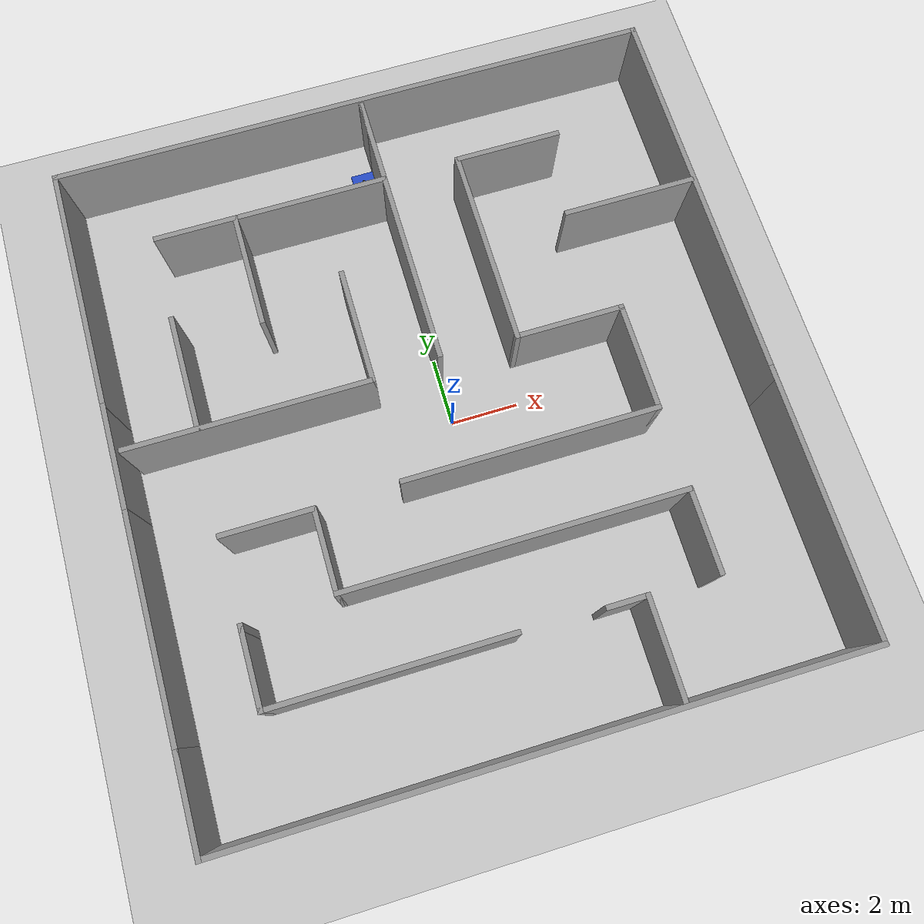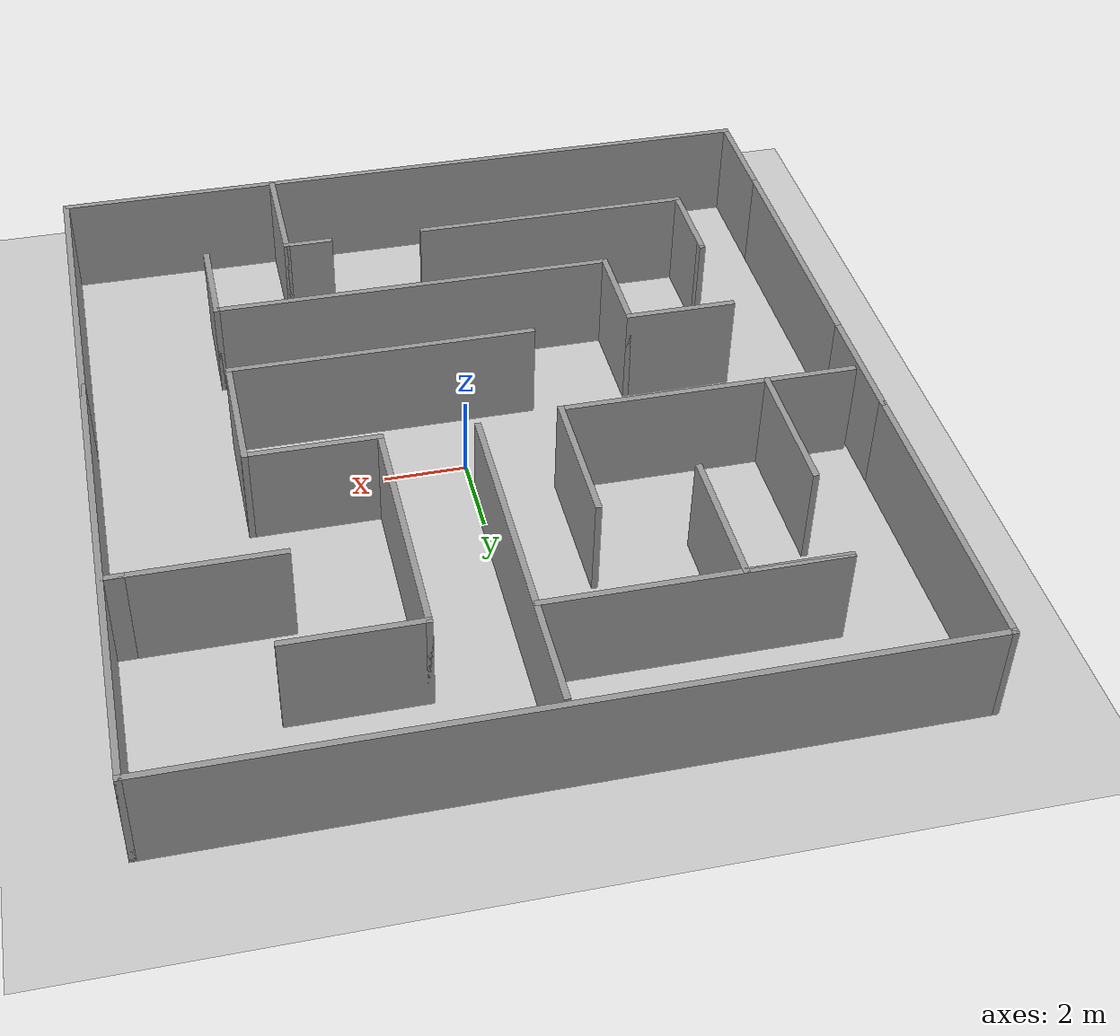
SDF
<sdf version="1.7">
 <world name="default">
  <light name="sun" type="directional">
   <pose>0 0 10 0 -0 0</pose>
   <diffuse>0.8 0.8 0.8 1</diffuse>
   <specular>0.2 0.2 0.2 1</specular>
   <attenuation>
    <range>1000</range>
    <constant>0.9</constant>
    <linear>0.01</linear>
    <quadratic>0.001</quadratic>
   </attenuation>
   <direction>-0.5 0.1 -0.9</direction>
   <spot><inner_angle>0</inner_angle><outer_angle>0</outer_angle><falloff>0</falloff></spot>
  </light>
  <model name="ground_plane">
   <static>1</static>
   <link name="link">
    <collision name="collision">
     <geometry><plane><normal>0 0 1</normal><size>100 100</size></plane></geometry>
     <surface>
      <contact><collide_bitmask>65535</collide_bitmask></contact>
      <friction><ode><mu>100</mu><mu2>50</mu2></ode></friction>
     </surface>
    </collision>
    <visual name="visual">
     <cast_shadows>0</cast_shadows>
     <geometry><plane><normal>0 0 1</normal><size>100 100</size></plane></geometry>
     <material>
      <script><uri>file://media/materials/scripts/gazebo.material</uri><name>Gazebo/Grey</name></script>
     </material>
    </visual>
   </link>
  </model>
  <gravity>0 0 -9.8</gravity>
  <magnetic_field>6e-06 2.3e-05 -4.2e-05</magnetic_field>
  <atmosphere type="adiabatic"/>
  <physics type="ode">
   <max_step_size>0.001</max_step_size>
   <real_time_factor>1</real_time_factor>
   <real_time_update_rate>1000</real_time_update_rate>
  </physics>
  <scene><ambient>0.4 0.4 0.4 1</ambient><background>0.7 0.7 0.7 1</background><shadows>1</shadows></scene>
  <audio><device>default</device></audio>
  <spherical_coordinates>
   <surface_model>EARTH_WGS84</surface_model>
   <latitude_deg>0</latitude_deg>
   <longitude_deg>0</longitude_deg>
   <elevation>0</elevation>
   <heading_deg>0</heading_deg>
  </spherical_coordinates>
  <model name="my_bot">
   <link name="base_link">
    <inertial>
     <pose>0 0 0.0345 0 -0 0</pose>
     <mass>1</mass>
     <inertia>
      <ixx>0.0393076</ixx>
      <ixy>0</ixy>
      <ixz>2.60209e-18</ixz>
      <iyy>0.0647243</iyy>
      <iyz>0</iyz>
      <izz>0.0875577</izz>
     </inertia>
    </inertial>
    <collision name="base_link_fixed_joint_lump__chassis_collision">
     <pose>0 0 0.083 0 -0 0</pose>
     <geometry><box><size>0.7 0.6 0.126</size></box></geometry>
    </collision>
    <collision name="base_link_fixed_joint_lump__caster1_wheel_collision_1">
     <pose>-0.3 0.2 -0.065 0 -0 0</pose>
     <geometry><sphere><radius>0.01</radius></sphere></geometry>
     <surface><friction><ode><mu>0.001</mu><mu2>0.001</mu2></ode></friction></surface>
    </collision>
    <collision name="base_link_fixed_joint_lump__caster2_wheel_collision_2">
     <pose>-0.3 -0.2 -0.065 0 -0 0</pose>
     <geometry><sphere><radius>0.01</radius></sphere></geometry>
     <surface><friction><ode><mu>0.001</mu><mu2>0.001</mu2></ode></friction></surface>
    </collision>
    <collision name="base_link_fixed_joint_lump__caster3_wheel_collision_3">
     <pose>0.3 -0.2 -0.065 0 -0 0</pose>
     <geometry><sphere><radius>0.01</radius></sphere></geometry>
     <surface><friction><ode><mu>0.001</mu><mu2>0.001</mu2></ode></friction></surface>
    </collision>
    <collision name="base_link_fixed_joint_lump__caster4_wheel_collision_4">
     <pose>0.3 0.2 -0.065 0 -0 0</pose>
     <geometry><sphere><radius>0.01</radius></sphere></geometry>
     <surface><friction><ode><mu>0.001</mu><mu2>0.001</mu2></ode></friction></surface>
    </collision>
    <collision name="base_link_fixed_joint_lump__laser_frame_collision_5">
     <pose>0 0 0.19 0 -0 0</pose>
     <geometry><cylinder><length>0.04</length><radius>0.05</radius></cylinder></geometry>
    </collision>
    <visual name="base_link_fixed_joint_lump__chassis_visual">
     <pose>0 0 0.083 0 -0 0</pose>
     <geometry><box><size>0.7 0.6 0.126</size></box></geometry>
     <material>
      <script><name>Gazebo/Blue</name><uri>file://media/materials/scripts/gazebo.material</uri></script>
     </material>
    </visual>
    <visual name="base_link_fixed_joint_lump__caster1_wheel_visual_1">
     <pose>-0.3 0.2 -0.065 0 -0 0</pose>
     <geometry><sphere><radius>0.01</radius></sphere></geometry>
     <material>
      <script><name>Gazebo/Blue</name><uri>file://media/materials/scripts/gazebo.material</uri></script>
     </material>
    </visual>
    <visual name="base_link_fixed_joint_lump__caster2_wheel_visual_2">
     <pose>-0.3 -0.2 -0.065 0 -0 0</pose>
     <geometry><sphere><radius>0.01</radius></sphere></geometry>
     <material>
      <script><name>Gazebo/Blue</name><uri>file://media/materials/scripts/gazebo.material</uri></script>
     </material>
    </visual>
    <visual name="base_link_fixed_joint_lump__caster3_wheel_visual_3">
     <pose>0.3 -0.2 -0.065 0 -0 0</pose>
     <geometry><sphere><radius>0.01</radius></sphere></geometry>
     <material>
      <script><name>Gazebo/Blue</name><uri>file://media/materials/scripts/gazebo.material</uri></script>
     </material>
    </visual>
    <visual name="base_link_fixed_joint_lump__caster4_wheel_visual_4">
     <pose>0.3 0.2 -0.065 0 -0 0</pose>
     <geometry><sphere><radius>0.01</radius></sphere></geometry>
     <material>
      <script><name>Gazebo/Blue</name><uri>file://media/materials/scripts/gazebo.material</uri></script>
     </material>
    </visual>
    <visual name="base_link_fixed_joint_lump__face_link_visual_5">
     <pose>0.35 0.05 0.093 3.14159 1.57079 3.14159</pose>
     <geometry><cylinder><length>0.002</length><radius>0.01</radius></cylinder></geometry>
     <material>
      <script><name>Gazebo/Black</name><uri>file://media/materials/scripts/gazebo.material</uri></script>
     </material>
    </visual>
    <visual name="base_link_fixed_joint_lump__face_link_visual_6">
     <pose>0.35 -0.05 0.093 3.14159 1.57079 3.14159</pose>
     <geometry><cylinder><length>0.002</length><radius>0.01</radius></cylinder></geometry>
     <material>
      <script><name>Gazebo/Black</name><uri>file://media/materials/scripts/gazebo.material</uri></script>
     </material>
    </visual>
    <visual name="base_link_fixed_joint_lump__face_link_visual_7">
     <pose>0.339 0 0.083 0 1.5 0</pose>
     <geometry><cylinder><length>0.02</length><radius>0.03</radius></cylinder></geometry>
     <material>
      <script><name>Gazebo/Black</name><uri>file://media/materials/scripts/gazebo.material</uri></script>
     </material>
    </visual>
    <visual name="base_link_fixed_joint_lump__laser_frame_visual_8">
     <pose>0 0 0.19 0 -0 0</pose>
     <geometry><cylinder><length>0.04</length><radius>0.05</radius></cylinder></geometry>
     <material>
      <script><name>Gazebo/Black</name><uri>file://media/materials/scripts/gazebo.material</uri></script>
     </material>
    </visual>
    <visual name="base_link_fixed_joint_lump__laser_frame_visual_9">
     <pose>0 0 0.14 0 -0 0</pose>
     <geometry><cylinder><length>0.1</length><radius>0.01</radius></cylinder></geometry>
     <material>
      <script><name>Gazebo/Black</name><uri>file://media/materials/scripts/gazebo.material</uri></script>
     </material>
    </visual>
    <sensor name="laser" type="ray">
     <visualize>1</visualize>
     <always_on>1</always_on>
     <update_rate>10</update_rate>
     <ray>
      <scan>
       <horizontal>
        <samples>360</samples>
        <resolution>1</resolution>
        <min_angle>-3.14</min_angle>
        <max_angle>3.14</max_angle>
       </horizontal>
       <vertical><samples>1</samples><min_angle>0</min_angle><max_angle>0</max_angle></vertical>
      </scan>
      <range><min>0.3</min><max>12</max><resolution>0.015</resolution></range>
      <noise><type>gaussian</type><mean>0</mean><stddev>0.01</stddev></noise>
     </ray>
     <plugin name="laser_controller" filename="libgazebo_ros_ray_sensor.so">
      <ros><remapping>~/out:=scan</remapping></ros>
      <output_type>sensor_msgs/LaserScan</output_type>
      <alwaysOn>1</alwaysOn>
      <updateRate>10</updateRate>
      <topicName>scan</topicName>
      <frame_name>laser_frame</frame_name>
      <output_type>sensor_msgs/LaserScan</output_type>
     </plugin>
     <pose>0 0 0.19 0 -0 0</pose>
    </sensor>
   </link>
   <joint name="left_wheel_joint" type="revolute">
    <pose relative_to="base_link">0 0.205 0 -1.5708 0 0</pose>
    <parent>base_link</parent>
    <child>left_wheel</child>
    <axis>
     <xyz>0 0 1</xyz>
     <limit><lower>-1e+16</lower><upper>1e+16</upper></limit>
     <dynamics><spring_reference>0</spring_reference><spring_stiffness>0</spring_stiffness></dynamics>
    </axis>
   </joint>
   <link name="left_wheel">
    <pose relative_to="left_wheel_joint">0 0 0 0 -0 0</pose>
    <inertial>
     <mass>0.05</mass>
     <inertia>
      <ixx>7.69792e-05</ixx>
      <ixy>0</ixy>
      <ixz>0</ixz>
      <iyy>7.69792e-05</iyy>
      <iyz>0</iyz>
      <izz>0.000140625</izz>
     </inertia>
    </inertial>
    <collision name="left_wheel_collision">
     <geometry><sphere><radius>0.075</radius></sphere></geometry>
    </collision>
    <visual name="left_wheel_visual">
     <geometry><cylinder><length>0.04</length><radius>0.075</radius></cylinder></geometry>
     <material>
      <script><name>Gazebo/Black</name><uri>file://media/materials/scripts/gazebo.material</uri></script>
     </material>
    </visual>
   </link>
   <joint name="right_wheel_joint" type="revolute">
    <pose relative_to="base_link">0 -0.205 0 1.5708 -0 0</pose>
    <parent>base_link</parent>
    <child>right_wheel</child>
    <axis>
     <xyz>0 0 -1</xyz>
     <limit><lower>-1e+16</lower><upper>1e+16</upper></limit>
     <dynamics><spring_reference>0</spring_reference><spring_stiffness>0</spring_stiffness></dynamics>
    </axis>
   </joint>
   <link name="right_wheel">
    <pose relative_to="right_wheel_joint">0 0 0 0 -0 0</pose>
    <inertial>
     <mass>0.05</mass>
     <inertia>
      <ixx>7.69792e-05</ixx>
      <ixy>0</ixy>
      <ixz>0</ixz>
      <iyy>7.69792e-05</iyy>
      <iyz>0</iyz>
      <izz>0.000140625</izz>
     </inertia>
    </inertial>
    <collision name="right_wheel_collision">
     <geometry><sphere><radius>0.075</radius></sphere></geometry>
    </collision>
    <visual name="right_wheel_visual">
     <geometry><cylinder><length>0.04</length><radius>0.075</radius></cylinder></geometry>
     <material>
      <script><name>Gazebo/Black</name><uri>file://media/materials/scripts/gazebo.material</uri></script>
     </material>
    </visual>
   </link>
   <static>0</static>
   <plugin name="gazebo_ros2_control" filename="libgazebo_ros2_control.so">
    <parameters>/home/robot/robot/install/ramabot/share/ramabot/config/my_controllers.yaml</parameters>
    <parameters>/home/robot/robot/install/ramabot/share/ramabot/config/gaz_ros2_ctl_use_sim.yaml</parameters>
   </plugin>
   <pose>-0.436142 8.41887 0.075 0 -0 3.13273</pose>
  </model>
  <model name="tembok">
   <pose>-0.288825 0.18924 0 0 -0 0</pose>
   <link name="Wall_0">
    <collision name="Wall_0_Collision">
     <geometry><box><size>6.5 0.15 2.5</size></box></geometry>
     <pose>0 0 1.25 0 -0 0</pose>
    </collision>
    <visual name="Wall_0_Visual">
     <pose>0 0 1.25 0 -0 0</pose>
     <geometry><box><size>6.5 0.15 2.5</size></box></geometry>
     <material>
      <script><uri>file://media/materials/scripts/gazebo.material</uri><name>Gazebo/Grey</name></script>
      <ambient>1 1 1 1</ambient>
     </material>
     <meta><layer>0</layer></meta>
    </visual>
    <pose>-9.05 -3.925 0 0 -0 -1.5708</pose>
   </link>
   <link name="Wall_10">
    <collision name="Wall_10_Collision">
     <geometry><box><size>8 0.15 2.5</size></box></geometry>
     <pose>0 0 1.25 0 -0 0</pose>
    </collision>
    <visual name="Wall_10_Visual">
     <pose>0 0 1.25 0 -0 0</pose>
     <geometry><box><size>8 0.15 2.5</size></box></geometry>
     <material>
      <script><uri>file://media/materials/scripts/gazebo.material</uri><name>Gazebo/Grey</name></script>
      <ambient>1 1 1 1</ambient>
     </material>
     <meta><layer>0</layer></meta>
    </visual>
    <pose>9.05 -5.775 0 0 -0 1.5708</pose>
   </link>
   <link name="Wall_2">
    <collision name="Wall_2_Collision">
     <geometry><box><size>3.25 0.15 2.5</size></box></geometry>
     <pose>0 0 1.25 0 -0 0</pose>
    </collision>
    <visual name="Wall_2_Visual">
     <pose>0 0 1.25 0 -0 0</pose>
     <geometry><box><size>3.25 0.15 2.5</size></box></geometry>
     <material>
      <script><uri>file://media/materials/scripts/gazebo.material</uri><name>Gazebo/Grey</name></script>
      <ambient>1 1 1 1</ambient>
     </material>
     <meta><layer>0</layer></meta>
    </visual>
    <pose>-9.05 0.8 0 0 -0 1.5708</pose>
   </link>
   <link name="Wall_4">
    <collision name="Wall_4_Collision">
     <geometry><box><size>7.5 0.15 2.5</size></box></geometry>
     <pose>0 0 1.25 0 -0 0</pose>
    </collision>
    <visual name="Wall_4_Visual">
     <pose>0 0 1.25 0 -0 0</pose>
     <geometry><box><size>7.5 0.15 2.5</size></box></geometry>
     <material>
      <script><uri>file://media/materials/scripts/gazebo.material</uri><name>Gazebo/Grey</name></script>
      <ambient>1 1 1 1</ambient>
     </material>
     <meta><layer>0</layer></meta>
    </visual>
    <pose>-9.05 6.025 0 0 -0 1.5708</pose>
   </link>
   <link name="Wall_5">
    <collision name="Wall_5_Collision">
     <geometry><box><size>18.25 0.15 2.5</size></box></geometry>
     <pose>0 0 1.25 0 -0 0</pose>
    </collision>
    <visual name="Wall_5_Visual">
     <pose>0 0 1.25 0 -0 0</pose>
     <geometry><box><size>18.25 0.15 2.5</size></box></geometry>
     <material>
      <script><uri>file://media/materials/scripts/gazebo.material</uri><name>Gazebo/Grey</name></script>
      <ambient>1 1 1 1</ambient>
     </material>
     <meta><layer>0</layer></meta>
    </visual>
    <pose>-0 9.7 0 0 -0 0</pose>
   </link>
   <link name="Wall_6">
    <collision name="Wall_6_Collision">
     <geometry><box><size>12 0.15 2.5</size></box></geometry>
     <pose>0 0 1.25 0 -0 0</pose>
    </collision>
    <visual name="Wall_6_Visual">
     <pose>0 0 1.25 0 -0 0</pose>
     <geometry><box><size>12 0.15 2.5</size></box></geometry>
     <material>
      <script><uri>file://media/materials/scripts/gazebo.material</uri><name>Gazebo/Grey</name></script>
      <ambient>1 1 1 1</ambient>
     </material>
     <meta><layer>0</layer></meta>
    </visual>
    <pose>9.05 3.775 0 0 -0 -1.5708</pose>
   </link>
   <link name="Wall_8">
    <collision name="Wall_8_Collision">
     <geometry><box><size>2.75 0.15 2.5</size></box></geometry>
     <pose>0 0 1.25 0 -0 0</pose>
    </collision>
    <visual name="Wall_8_Visual">
     <pose>0 0 1.25 0 -0 0</pose>
     <geometry><box><size>2.75 0.15 2.5</size></box></geometry>
     <material>
      <script><uri>file://media/materials/scripts/gazebo.material</uri><name>Gazebo/Grey</name></script>
      <ambient>1 1 1 1</ambient>
     </material>
     <meta><layer>0</layer></meta>
    </visual>
    <pose>-9.05 -8.4 0 0 -0 -1.5708</pose>
   </link>
   <link name="Wall_9">
    <collision name="Wall_9_Collision">
     <geometry><box><size>18.25 0.15 2.5</size></box></geometry>
     <pose>0 0 1.25 0 -0 0</pose>
    </collision>
    <visual name="Wall_9_Visual">
     <pose>0 0 1.25 0 -0 0</pose>
     <geometry><box><size>18.25 0.15 2.5</size></box></geometry>
     <material>
      <script><uri>file://media/materials/scripts/gazebo.material</uri><name>Gazebo/Grey</name></script>
      <ambient>1 1 1 1</ambient>
     </material>
     <meta><layer>0</layer></meta>
    </visual>
    <pose>-0 -9.7 0 0 -0 0</pose>
   </link>
   <static>1</static>
  </model>
  <model name="maze2">
   <pose>-0.218519 0.119147 0 0 -0 0</pose>
   <link name="Wall_27">
    <collision name="Wall_27_Collision">
     <geometry><box><size>7.25 0.15 2.5</size></box></geometry>
     <pose>0 0 1.25 0 -0 0</pose>
    </collision>
    <visual name="Wall_27_Visual">
     <pose>0 0 1.25 0 -0 0</pose>
     <geometry><box><size>7.25 0.15 2.5</size></box></geometry>
     <material>
      <script><uri>file://media/materials/scripts/gazebo.material</uri><name>Gazebo/Grey</name></script>
      <ambient>1 1 1 1</ambient>
     </material>
     <meta><layer>0</layer></meta>
    </visual>
    <pose>-5.33657 1.03524 0 0 -0 0</pose>
   </link>
   <link name="Wall_28">
    <collision name="Wall_28_Collision">
     <geometry><box><size>3.5 0.15 2.5</size></box></geometry>
     <pose>0 0 1.25 0 -0 0</pose>
    </collision>
    <visual name="Wall_28_Visual">
     <pose>0 0 1.25 0 -0 0</pose>
     <geometry><box><size>3.5 0.15 2.5</size></box></geometry>
     <material>
      <script><uri>file://media/materials/scripts/gazebo.material</uri><name>Gazebo/Grey</name></script>
      <ambient>1 1 1 1</ambient>
     </material>
     <meta><layer>0</layer></meta>
    </visual>
    <pose>-1.78656 2.71024 0 0 -0 1.5708</pose>
   </link>
   <link name="Wall_30">
    <collision name="Wall_30_Collision">
     <geometry><box><size>7.5 0.15 2.5</size></box></geometry>
     <pose>0 0 1.25 0 -0 0</pose>
    </collision>
    <visual name="Wall_30_Visual">
     <pose>0 0 1.25 0 -0 0</pose>
     <geometry><box><size>7.5 0.15 2.5</size></box></geometry>
     <material>
      <script><uri>file://media/materials/scripts/gazebo.material</uri><name>Gazebo/Grey</name></script>
      <ambient>1 1 1 1</ambient>
     </material>
     <meta><layer>0</layer></meta>
    </visual>
    <pose>1.88844 -1.96476 0 0 -0 0</pose>
   </link>
   <link name="Wall_31">
    <collision name="Wall_31_Collision">
     <geometry><box><size>3.25 0.15 2.5</size></box></geometry>
     <pose>0 0 1.25 0 -0 0</pose>
    </collision>
    <visual name="Wall_31_Visual">
     <pose>0 0 1.25 0 -0 0</pose>
     <geometry><box><size>3.25 0.15 2.5</size></box></geometry>
     <material>
      <script><uri>file://media/materials/scripts/gazebo.material</uri><name>Gazebo/Grey</name></script>
      <ambient>1 1 1 1</ambient>
     </material>
     <meta><layer>0</layer></meta>
    </visual>
    <pose>5.56344 -0.41476 0 0 -0 1.5708</pose>
   </link>
   <link name="Wall_32">
    <collision name="Wall_32_Collision">
     <geometry><box><size>3.25 0.15 2.5</size></box></geometry>
     <pose>0 0 1.25 0 -0 0</pose>
    </collision>
    <visual name="Wall_32_Visual">
     <pose>0 0 1.25 0 -0 0</pose>
     <geometry><box><size>3.25 0.15 2.5</size></box></geometry>
     <material>
      <script><uri>file://media/materials/scripts/gazebo.material</uri><name>Gazebo/Grey</name></script>
      <ambient>1 1 1 1</ambient>
     </material>
     <meta><layer>0</layer></meta>
    </visual>
    <pose>4.01344 1.13524 0 0 -0 3.14159</pose>
   </link>
   <link name="Wall_33">
    <collision name="Wall_33_Collision">
     <geometry><box><size>6 0.15 2.5</size></box></geometry>
     <pose>0 0 1.25 0 -0 0</pose>
    </collision>
    <visual name="Wall_33_Visual">
     <pose>0 0 1.25 0 -0 0</pose>
     <geometry><box><size>6 0.15 2.5</size></box></geometry>
     <material>
      <script><uri>file://media/materials/scripts/gazebo.material</uri><name>Gazebo/Grey</name></script>
      <ambient>1 1 1 1</ambient>
     </material>
     <meta><layer>0</layer></meta>
    </visual>
    <pose>2.46344 4.06024 0 0 -0 1.5708</pose>
   </link>
   <link name="Wall_34">
    <collision name="Wall_34_Collision">
     <geometry><box><size>3.25 0.15 2.5</size></box></geometry>
     <pose>0 0 1.25 0 -0 0</pose>
    </collision>
    <visual name="Wall_34_Visual">
     <pose>0 0 1.25 0 -0 0</pose>
     <geometry><box><size>3.25 0.15 2.5</size></box></geometry>
     <material>
      <script><uri>file://media/materials/scripts/gazebo.material</uri><name>Gazebo/Grey</name></script>
      <ambient>1 1 1 1</ambient>
     </material>
     <meta><layer>0</layer></meta>
    </visual>
    <pose>4.01344 6.98524 0 0 -0 0</pose>
   </link>
   <link name="Wall_36">
    <collision name="Wall_36_Collision">
     <geometry><box><size>0.5 0.15 2.5</size></box></geometry>
     <pose>0 0 1.25 0 -0 0</pose>
    </collision>
    <visual name="Wall_36_Visual">
     <pose>0 0 1.25 0 -0 0</pose>
     <geometry><box><size>0.5 0.15 2.5</size></box></geometry>
     <material>
      <script><uri>file://media/materials/scripts/gazebo.material</uri><name>Gazebo/Grey</name></script>
      <ambient>1 1 1 1</ambient>
     </material>
     <meta><layer>0</layer></meta>
    </visual>
    <pose>8.71157 4.38687 0 0 -0 0</pose>
   </link>
   <link name="Wall_37">
    <collision name="Wall_37_Collision">
     <geometry><box><size>4 0.15 2.5</size></box></geometry>
     <pose>0 0 1.25 0 -0 0</pose>
    </collision>
    <visual name="Wall_37_Visual">
     <pose>0 0 1.25 0 -0 0</pose>
     <geometry><box><size>4 0.15 2.5</size></box></geometry>
     <material>
      <script><uri>file://media/materials/scripts/gazebo.material</uri><name>Gazebo/Grey</name></script>
      <ambient>1 1 1 1</ambient>
     </material>
     <meta><layer>0</layer></meta>
    </visual>
    <pose>6.96157 4.38687 0 0 -0 3.14159</pose>
   </link>
   <link name="Wall_39">
    <collision name="Wall_39_Collision">
     <geometry><box><size>1 0.15 2.5</size></box></geometry>
     <pose>0 0 1.25 0 -0 0</pose>
    </collision>
    <visual name="Wall_39_Visual">
     <pose>0 0 1.25 0 -0 0</pose>
     <geometry><box><size>1 0.15 2.5</size></box></geometry>
     <material>
      <script><uri>file://media/materials/scripts/gazebo.material</uri><name>Gazebo/Grey</name></script>
      <ambient>1 1 1 1</ambient>
     </material>
     <meta><layer>0</layer></meta>
    </visual>
    <pose>0.210703 9.1477 0 0 -0 1.5708</pose>
   </link>
   <link name="Wall_40">
    <collision name="Wall_40_Collision">
     <geometry><box><size>8.5 0.15 2.5</size></box></geometry>
     <pose>0 0 1.25 0 -0 0</pose>
    </collision>
    <visual name="Wall_40_Visual">
     <pose>0 0 1.25 0 -0 0</pose>
     <geometry><box><size>8.5 0.15 2.5</size></box></geometry>
     <material>
      <script><uri>file://media/materials/scripts/gazebo.material</uri><name>Gazebo/Grey</name></script>
      <ambient>1 1 1 1</ambient>
     </material>
     <meta><layer>0</layer></meta>
    </visual>
    <pose>0.210703 5.3977 0 0 -0 -1.5708</pose>
   </link>
   <link name="Wall_44">
    <collision name="Wall_44_Collision">
     <geometry><box><size>7 0.15 2.5</size></box></geometry>
     <pose>0 0 1.25 0 -0 0</pose>
    </collision>
    <visual name="Wall_44_Visual">
     <pose>0 0 1.25 0 -0 0</pose>
     <geometry><box><size>7 0.15 2.5</size></box></geometry>
     <material>
      <script><uri>file://media/materials/scripts/gazebo.material</uri><name>Gazebo/Grey</name></script>
      <ambient>1 1 1 1</ambient>
     </material>
     <meta><layer>0</layer></meta>
    </visual>
    <pose>-3.24456 6.97628 0 0 -0 3.14159</pose>
   </link>
   <link name="Wall_45">
    <collision name="Wall_45_Collision">
     <geometry><box><size>2.5 0.15 2.5</size></box></geometry>
     <pose>0 0 1.25 0 -0 0</pose>
    </collision>
    <visual name="Wall_45_Visual">
     <pose>0 0 1.25 0 -0 0</pose>
     <geometry><box><size>2.5 0.15 2.5</size></box></geometry>
     <material>
      <script><uri>file://media/materials/scripts/gazebo.material</uri><name>Gazebo/Grey</name></script>
      <ambient>1 1 1 1</ambient>
     </material>
     <meta><layer>0</layer></meta>
    </visual>
    <pose>-5.49456 6.97628 0 0 -0 0</pose>
   </link>
   <link name="Wall_46">
    <collision name="Wall_46_Collision">
     <geometry><box><size>3.5 0.15 2.5</size></box></geometry>
     <pose>0 0 1.25 0 -0 0</pose>
    </collision>
    <visual name="Wall_46_Visual">
     <pose>0 0 1.25 0 -0 0</pose>
     <geometry><box><size>3.5 0.15 2.5</size></box></geometry>
     <material>
      <script><uri>file://media/materials/scripts/gazebo.material</uri><name>Gazebo/Grey</name></script>
      <ambient>1 1 1 1</ambient>
     </material>
     <meta><layer>0</layer></meta>
    </visual>
    <pose>-4.31956 5.30128 0 0 -0 -1.5708</pose>
   </link>
   <link name="Wall_48">
    <collision name="Wall_48_Collision">
     <geometry><box><size>3.5 0.15 2.5</size></box></geometry>
     <pose>0 0 1.25 0 -0 0</pose>
    </collision>
    <visual name="Wall_48_Visual">
     <pose>0 0 1.25 0 -0 0</pose>
     <geometry><box><size>3.5 0.15 2.5</size></box></geometry>
     <material>
      <script><uri>file://media/materials/scripts/gazebo.material</uri><name>Gazebo/Grey</name></script>
      <ambient>1 1 1 1</ambient>
     </material>
     <meta><layer>0</layer></meta>
    </visual>
    <pose>-6.76354 2.71677 0 0 -0 1.5708</pose>
   </link>
   <link name="Wall_50">
    <collision name="Wall_50_Collision">
     <geometry><box><size>2.75 0.15 2.5</size></box></geometry>
     <pose>0 0 1.25 0 -0 0</pose>
    </collision>
    <visual name="Wall_50_Visual">
     <pose>0 0 1.25 0 -0 0</pose>
     <geometry><box><size>2.75 0.15 2.5</size></box></geometry>
     <material>
      <script><uri>file://media/materials/scripts/gazebo.material</uri><name>Gazebo/Grey</name></script>
      <ambient>1 1 1 1</ambient>
     </material>
     <meta><layer>0</layer></meta>
    </visual>
    <pose>-5.55531 -2.01725 0 0 -0 0</pose>
   </link>
   <link name="Wall_51">
    <collision name="Wall_51_Collision">
     <geometry><box><size>2.5 0.15 2.5</size></box></geometry>
     <pose>0 0 1.25 0 -0 0</pose>
    </collision>
    <visual name="Wall_51_Visual">
     <pose>0 0 1.25 0 -0 0</pose>
     <geometry><box><size>2.5 0.15 2.5</size></box></geometry>
     <material>
      <script><uri>file://media/materials/scripts/gazebo.material</uri><name>Gazebo/Grey</name></script>
      <ambient>1 1 1 1</ambient>
     </material>
     <meta><layer>0</layer></meta>
    </visual>
    <pose>-4.25531 -3.19225 0 0 -0 -1.5708</pose>
   </link>
   <link name="Wall_52">
    <collision name="Wall_52_Collision">
     <geometry><box><size>10 0.15 2.5</size></box></geometry>
     <pose>0 0 1.25 0 -0 0</pose>
    </collision>
    <visual name="Wall_52_Visual">
     <pose>0 0 1.25 0 -0 0</pose>
     <geometry><box><size>10 0.15 2.5</size></box></geometry>
     <material>
      <script><uri>file://media/materials/scripts/gazebo.material</uri><name>Gazebo/Grey</name></script>
      <ambient>1 1 1 1</ambient>
     </material>
     <meta><layer>0</layer></meta>
    </visual>
    <pose>0.669687 -4.36725 0 0 -0 0</pose>
   </link>
   <link name="Wall_53">
    <collision name="Wall_53_Collision">
     <geometry><box><size>2.5 0.15 2.5</size></box></geometry>
     <pose>0 0 1.25 0 -0 0</pose>
    </collision>
    <visual name="Wall_53_Visual">
     <pose>0 0 1.25 0 -0 0</pose>
     <geometry><box><size>2.5 0.15 2.5</size></box></geometry>
     <material>
      <script><uri>file://media/materials/scripts/gazebo.material</uri><name>Gazebo/Grey</name></script>
      <ambient>1 1 1 1</ambient>
     </material>
     <meta><layer>0</layer></meta>
    </visual>
    <pose>5.59469 -5.54225 0 0 -0 -1.5708</pose>
   </link>
   <link name="Wall_56">
    <collision name="Wall_56_Collision">
     <geometry><box><size>1.25 0.15 2.5</size></box></geometry>
     <pose>0 0 1.25 0 -0 0</pose>
    </collision>
    <visual name="Wall_56_Visual">
     <pose>0 0 1.25 0 -0 0</pose>
     <geometry><box><size>1.25 0.15 2.5</size></box></geometry>
     <material>
      <script><uri>file://media/materials/scripts/gazebo.material</uri><name>Gazebo/Grey</name></script>
      <ambient>1 1 1 1</ambient>
     </material>
     <meta><layer>0</layer></meta>
    </visual>
    <pose>2.99412 -6.7227 0 0 -0 0</pose>
   </link>
   <link name="Wall_57">
    <collision name="Wall_57_Collision">
     <geometry><box><size>3 0.15 2.5</size></box></geometry>
     <pose>0 0 1.25 0 -0 0</pose>
    </collision>
    <visual name="Wall_57_Visual">
     <pose>0 0 1.25 0 -0 0</pose>
     <geometry><box><size>3 0.15 2.5</size></box></geometry>
     <material>
      <script><uri>file://media/materials/scripts/gazebo.material</uri><name>Gazebo/Grey</name></script>
      <ambient>1 1 1 1</ambient>
     </material>
     <meta><layer>0</layer></meta>
    </visual>
    <pose>3.54412 -8.1477 0 0 -0 -1.5708</pose>
   </link>
   <link name="Wall_59">
    <collision name="Wall_59_Collision">
     <geometry><box><size>7 0.15 2.5</size></box></geometry>
     <pose>0 0 1.25 0 -0 0</pose>
    </collision>
    <visual name="Wall_59_Visual">
     <pose>0 0 1.25 0 -0 0</pose>
     <geometry><box><size>7 0.15 2.5</size></box></geometry>
     <material>
      <script><uri>file://media/materials/scripts/gazebo.material</uri><name>Gazebo/Grey</name></script>
      <ambient>1 1 1 1</ambient>
     </material>
     <meta><layer>0</layer></meta>
    </visual>
    <pose>-3.4281 -6.66696 0 0 -0 3.14159</pose>
   </link>
   <link name="Wall_60">
    <collision name="Wall_60_Collision">
     <geometry><box><size>2.25 0.15 2.5</size></box></geometry>
     <pose>0 0 1.25 0 -0 0</pose>
    </collision>
    <visual name="Wall_60_Visual">
     <pose>0 0 1.25 0 -0 0</pose>
     <geometry><box><size>2.25 0.15 2.5</size></box></geometry>
     <material>
      <script><uri>file://media/materials/scripts/gazebo.material</uri><name>Gazebo/Grey</name></script>
      <ambient>1 1 1 1</ambient>
     </material>
     <meta><layer>0</layer></meta>
    </visual>
    <pose>-6.8531 -5.61696 0 0 -0 1.5708</pose>
   </link>
   <link name="Wall_61">
    <collision name="Wall_61_Collision">
     <geometry><box><size>0.25 0.15 2.5</size></box></geometry>
     <pose>0 0 1.25 0 -0 0</pose>
    </collision>
    <visual name="Wall_61_Visual">
     <pose>0 0 1.25 0 -0 0</pose>
     <geometry><box><size>0.25 0.15 2.5</size></box></geometry>
     <material>
      <script><uri>file://media/materials/scripts/gazebo.material</uri><name>Gazebo/Grey</name></script>
      <ambient>1 1 1 1</ambient>
     </material>
     <meta><layer>0</layer></meta>
    </visual>
    <pose>-6.8531 -4.51696 0 0 -0 1.5708</pose>
   </link>
   <static>1</static>
  </model>
 </world>
</sdf>
